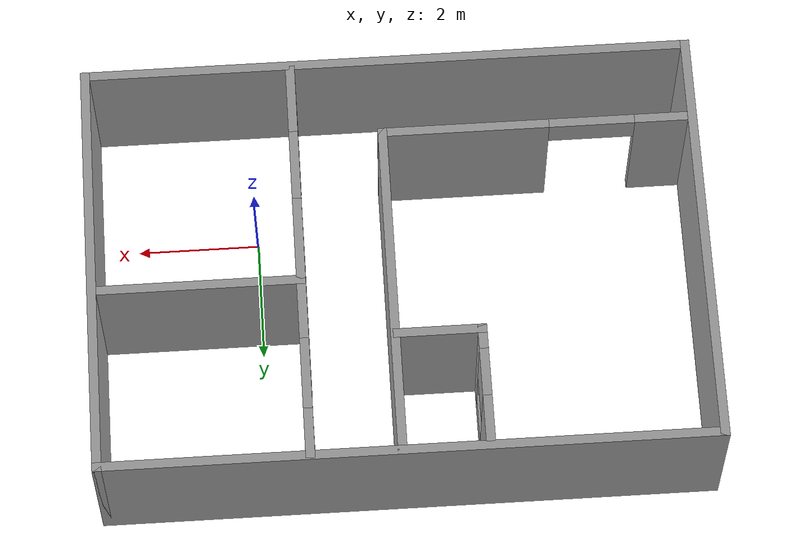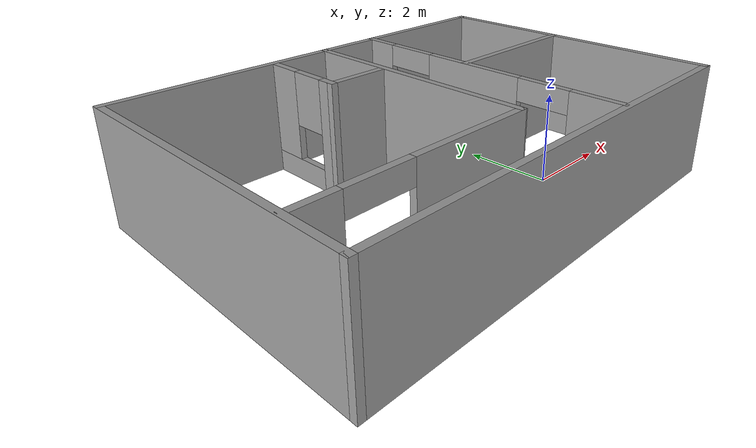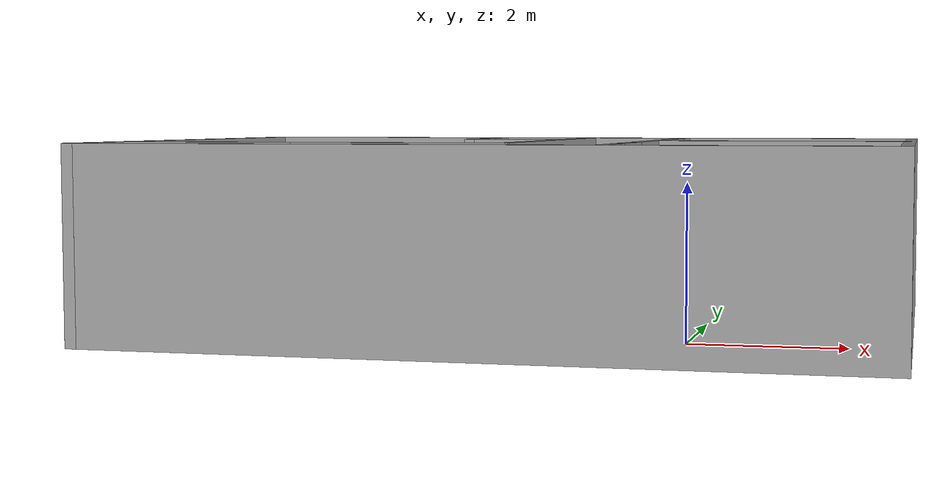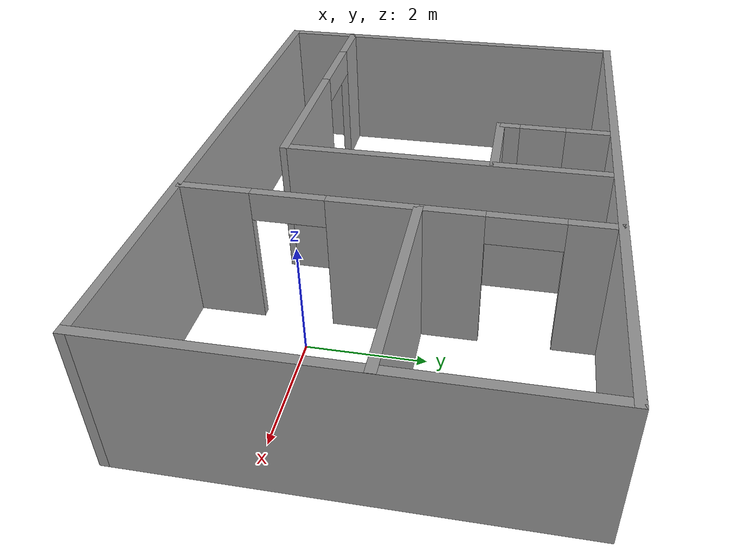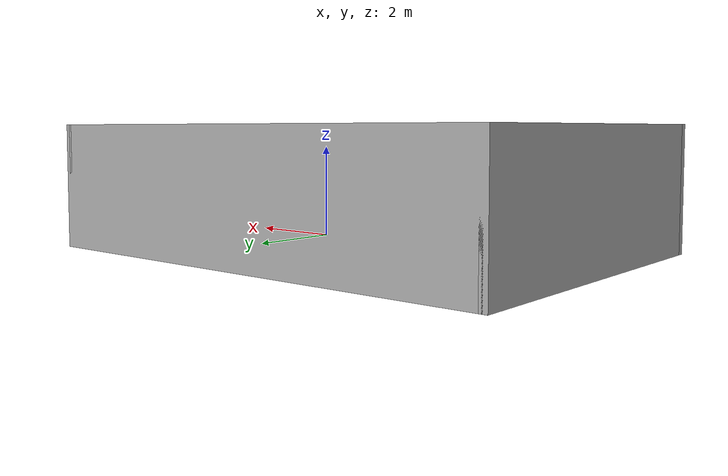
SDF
<?xml version='1.0'?>
<sdf version='1.6'>
  <model name='Movis'>
    <pose frame=''>-2.2765 1.313 0 0 -0 0</pose>
    <link name='Wall_1'>
      <collision name='Wall_1_Collision'>
        <geometry>
          <box>
            <size>10.037 0.15 2.5</size>
          </box>
        </geometry>
        <pose frame=''>0 0 1.25 0 -0 0</pose>
      </collision>
      <visual name='Wall_1_Visual'>
        <pose frame=''>0 0 1.25 0 -0 0</pose>
        <geometry>
          <box>
            <size>10.037 0.15 2.5</size>
          </box>
        </geometry>
        <material>
          <script>
            <uri>file://media/materials/scripts/gazebo.material</uri>
            <name>Gazebo/Grey</name>
          </script>
          <ambient>1 1 1 1</ambient>
        </material>
      </visual>
      <pose frame=''>0 3.425 0 0 -0 0</pose>
    </link>
    <link name='Wall_11'>
      <collision name='Wall_11_Collision'>
        <geometry>
          <box>
            <size>3.5 0.15 2.5</size>
          </box>
        </geometry>
        <pose frame=''>0 0 1.25 0 -0 0</pose>
      </collision>
      <visual name='Wall_11_Visual'>
        <pose frame=''>0 0 1.25 0 -0 0</pose>
        <geometry>
          <box>
            <size>3.5 0.15 2.5</size>
          </box>
        </geometry>
        <material>
          <script>
            <uri>file://media/materials/scripts/gazebo.material</uri>
            <name>Gazebo/Grey</name>
          </script>
          <ambient>1 1 1 1</ambient>
        </material>
      </visual>
      <pose frame=''>3.2645 0.416 0 0 -0 0</pose>
    </link>
    <link name='Wall_13'>
      <collision name='Wall_13_Collision'>
        <geometry>
          <box>
            <size>1.5 0.15 2.5</size>
          </box>
        </geometry>
        <pose frame=''>0 0 1.25 0 -0 0</pose>
      </collision>
      <visual name='Wall_13_Visual'>
        <pose frame=''>0 0 1.25 0 -0 0</pose>
        <geometry>
          <box>
            <size>1.5 0.15 2.5</size>
          </box>
        </geometry>
        <material>
          <script>
            <uri>file://media/materials/scripts/gazebo.material</uri>
            <name>Gazebo/Grey</name>
          </script>
          <ambient>1 1 1 1</ambient>
        </material>
      </visual>
      <pose frame=''>-0.580623 1.44047 0 0 -0 3.14159</pose>
    </link>
    <link name='Wall_14'>
      <pose frame=''>-1.25562 2.36547 0 0 -0 1.5708</pose>
      <visual name='Wall_14_Visual_0'>
        <pose frame=''>-0.790097 0 1.25 0 -0 0</pose>
        <geometry>
          <box>
            <size>0.419805 0.15 2.5</size>
          </box>
        </geometry>
        <material>
          <script>
            <uri>file://media/materials/scripts/gazebo.material</uri>
            <name>Gazebo/Grey</name>
          </script>
          <ambient>1 1 1 1</ambient>
        </material>
      </visual>
      <collision name='Wall_14_Collision_0'>
        <geometry>
          <box>
            <size>0.419805 0.15 2.5</size>
          </box>
        </geometry>
        <pose frame=''>-0.790097 0 1.25 0 -0 0</pose>
      </collision>
      <visual name='Wall_14_Visual_1'>
        <pose frame=''>0.209903 0 0.25 0 -0 0</pose>
        <geometry>
          <box>
            <size>1.5802 0.15 0.5</size>
          </box>
        </geometry>
        <material>
          <script>
            <uri>file://media/materials/scripts/gazebo.material</uri>
            <name>Gazebo/Grey</name>
          </script>
          <ambient>1 1 1 1</ambient>
        </material>
      </visual>
      <collision name='Wall_14_Collision_1'>
        <geometry>
          <box>
            <size>1.5802 0.15 0.5</size>
          </box>
        </geometry>
        <pose frame=''>0.209903 0 0.25 0 -0 0</pose>
      </collision>
      <visual name='Wall_14_Visual_2'>
        <pose frame=''>0.609903 0 1.5 0 -0 0</pose>
        <geometry>
          <box>
            <size>0.780195 0.15 2</size>
          </box>
        </geometry>
        <material>
          <script>
            <uri>file://media/materials/scripts/gazebo.material</uri>
            <name>Gazebo/Grey</name>
          </script>
          <ambient>1 1 1 1</ambient>
        </material>
      </visual>
      <collision name='Wall_14_Collision_2'>
        <geometry>
          <box>
            <size>0.780195 0.15 2</size>
          </box>
        </geometry>
        <pose frame=''>0.609903 0 1.5 0 -0 0</pose>
      </collision>
      <visual name='Wall_14_Visual_3'>
        <pose frame=''>-0.180195 0 1.9 0 -0 0</pose>
        <geometry>
          <box>
            <size>0.8 0.15 1.2</size>
          </box>
        </geometry>
        <material>
          <script>
            <uri>file://media/materials/scripts/gazebo.material</uri>
            <name>Gazebo/Grey</name>
          </script>
          <ambient>1 1 1 1</ambient>
        </material>
      </visual>
      <collision name='Wall_14_Collision_3'>
        <geometry>
          <box>
            <size>0.8 0.15 1.2</size>
          </box>
        </geometry>
        <pose frame=''>-0.180195 0 1.9 0 -0 0</pose>
      </collision>
    </link>
    <link name='Wall_2'>
      <collision name='Wall_2_Collision'>
        <geometry>
          <box>
            <size>7 0.15 2.5</size>
          </box>
        </geometry>
        <pose frame=''>0 0 1.25 0 -0 0</pose>
      </collision>
      <visual name='Wall_2_Visual'>
        <pose frame=''>0 0 1.25 0 -0 0</pose>
        <geometry>
          <box>
            <size>7 0.15 2.5</size>
          </box>
        </geometry>
        <material>
          <script>
            <uri>file://media/materials/scripts/gazebo.material</uri>
            <name>Gazebo/Grey</name>
          </script>
          <ambient>1 1 1 1</ambient>
        </material>
      </visual>
      <pose frame=''>4.9435 0 0 0 0 -1.5708</pose>
    </link>
    <link name='Wall_3'>
      <collision name='Wall_3_Collision'>
        <geometry>
          <box>
            <size>10.037 0.15 2.5</size>
          </box>
        </geometry>
        <pose frame=''>0 0 1.25 0 -0 0</pose>
      </collision>
      <visual name='Wall_3_Visual'>
        <pose frame=''>0 0 1.25 0 -0 0</pose>
        <geometry>
          <box>
            <size>10.037 0.15 2.5</size>
          </box>
        </geometry>
        <material>
          <script>
            <uri>file://media/materials/scripts/gazebo.material</uri>
            <name>Gazebo/Grey</name>
          </script>
          <ambient>1 1 1 1</ambient>
        </material>
      </visual>
      <pose frame=''>0 -3.425 0 0 -0 3.14159</pose>
    </link>
    <link name='Wall_4'>
      <collision name='Wall_4_Collision'>
        <geometry>
          <box>
            <size>7 0.15 2.5</size>
          </box>
        </geometry>
        <pose frame=''>0 0 1.25 0 -0 0</pose>
      </collision>
      <visual name='Wall_4_Visual'>
        <pose frame=''>0 0 1.25 0 -0 0</pose>
        <geometry>
          <box>
            <size>7 0.15 2.5</size>
          </box>
        </geometry>
        <material>
          <script>
            <uri>file://media/materials/scripts/gazebo.material</uri>
            <name>Gazebo/Grey</name>
          </script>
          <ambient>1 1 1 1</ambient>
        </material>
      </visual>
      <pose frame=''>-4.9435 0 0 0 -0 1.5708</pose>
    </link>
    <link name='Wall_6'>
      <pose frame=''>-2.39 -2.114 0 0 -0 0</pose>
      <visual name='Wall_6_Visual_0'>
        <pose frame=''>-2.10023 0 1.25 0 -0 0</pose>
        <geometry>
          <box>
            <size>0.986678 0.15 2.5</size>
          </box>
        </geometry>
        <material>
          <script>
            <uri>file://media/materials/scripts/gazebo.material</uri>
            <name>Gazebo/Grey</name>
          </script>
          <ambient>1 1 1 1</ambient>
        </material>
      </visual>
      <collision name='Wall_6_Collision_0'>
        <geometry>
          <box>
            <size>0.986678 0.15 2.5</size>
          </box>
        </geometry>
        <pose frame=''>-2.10023 0 1.25 0 -0 0</pose>
      </collision>
      <visual name='Wall_6_Visual_1'>
        <pose frame=''>1.19334 0 1.25 0 -0 0</pose>
        <geometry>
          <box>
            <size>2.80046 0.15 2.5</size>
          </box>
        </geometry>
        <material>
          <script>
            <uri>file://media/materials/scripts/gazebo.material</uri>
            <name>Gazebo/Grey</name>
          </script>
          <ambient>1 1 1 1</ambient>
        </material>
      </visual>
      <collision name='Wall_6_Collision_1'>
        <geometry>
          <box>
            <size>2.80046 0.15 2.5</size>
          </box>
        </geometry>
        <pose frame=''>1.19334 0 1.25 0 -0 0</pose>
      </collision>
      <visual name='Wall_6_Visual_2'>
        <pose frame=''>-0.906891 0 2.25 0 -0 0</pose>
        <geometry>
          <box>
            <size>1.4 0.15 0.5</size>
          </box>
        </geometry>
        <material>
          <script>
            <uri>file://media/materials/scripts/gazebo.material</uri>
            <name>Gazebo/Grey</name>
          </script>
          <ambient>1 1 1 1</ambient>
        </material>
      </visual>
      <collision name='Wall_6_Collision_2'>
        <geometry>
          <box>
            <size>1.4 0.15 0.5</size>
          </box>
        </geometry>
        <pose frame=''>-0.906891 0 2.25 0 -0 0</pose>
      </collision>
    </link>
    <link name='Wall_7'>
      <collision name='Wall_7_Collision'>
        <geometry>
          <box>
            <size>5.66484 0.15 2.5</size>
          </box>
        </geometry>
        <pose frame=''>0 0 1.25 0 -0 0</pose>
      </collision>
      <visual name='Wall_7_Visual'>
        <pose frame=''>0 0 1.25 0 -0 0</pose>
        <geometry>
          <box>
            <size>5.66484 0.15 2.5</size>
          </box>
        </geometry>
        <material>
          <script>
            <uri>file://media/materials/scripts/gazebo.material</uri>
            <name>Gazebo/Grey</name>
          </script>
          <ambient>1 1 1 1</ambient>
        </material>
      </visual>
      <pose frame=''>0.1335 0.6435 0 0 -0 1.56898</pose>
    </link>
    <link name='Wall_9'>
      <pose frame=''>1.5835 0.028 0 0 0 -1.57258</pose>
      <visual name='Wall_9_Visual_0'>
        <pose frame=''>-3.02696 0 1.25 0 -0 0</pose>
        <geometry>
          <box>
            <size>0.843657 0.15 2.5</size>
          </box>
        </geometry>
        <material>
          <script>
            <uri>file://media/materials/scripts/gazebo.material</uri>
            <name>Gazebo/Grey</name>
          </script>
          <ambient>1 1 1 1</ambient>
        </material>
      </visual>
      <collision name='Wall_9_Collision_0'>
        <geometry>
          <box>
            <size>0.843657 0.15 2.5</size>
          </box>
        </geometry>
        <pose frame=''>-3.02696 0 1.25 0 -0 0</pose>
      </collision>
      <visual name='Wall_9_Visual_1'>
        <pose frame=''>-0.178677 0 1.25 0 -0 0</pose>
        <geometry>
          <box>
            <size>2.45291 0.15 2.5</size>
          </box>
        </geometry>
        <material>
          <script>
            <uri>file://media/materials/scripts/gazebo.material</uri>
            <name>Gazebo/Grey</name>
          </script>
          <ambient>1 1 1 1</ambient>
        </material>
      </visual>
      <collision name='Wall_9_Collision_1'>
        <geometry>
          <box>
            <size>2.45291 0.15 2.5</size>
          </box>
        </geometry>
        <pose frame=''>-0.178677 0 1.25 0 -0 0</pose>
      </collision>
      <visual name='Wall_9_Visual_2'>
        <pose frame=''>2.84829 0 1.25 0 -0 0</pose>
        <geometry>
          <box>
            <size>1.20101 0.15 2.5</size>
          </box>
        </geometry>
        <material>
          <script>
            <uri>file://media/materials/scripts/gazebo.material</uri>
            <name>Gazebo/Grey</name>
          </script>
          <ambient>1 1 1 1</ambient>
        </material>
      </visual>
      <collision name='Wall_9_Collision_2'>
        <geometry>
          <box>
            <size>1.20101 0.15 2.5</size>
          </box>
        </geometry>
        <pose frame=''>2.84829 0 1.25 0 -0 0</pose>
      </collision>
      <visual name='Wall_9_Visual_3'>
        <pose frame=''>-2.00513 0 2.25 0 -0 0</pose>
        <geometry>
          <box>
            <size>1.2 0.15 0.5</size>
          </box>
        </geometry>
        <material>
          <script>
            <uri>file://media/materials/scripts/gazebo.material</uri>
            <name>Gazebo/Grey</name>
          </script>
          <ambient>1 1 1 1</ambient>
        </material>
      </visual>
      <collision name='Wall_9_Collision_3'>
        <geometry>
          <box>
            <size>1.2 0.15 0.5</size>
          </box>
        </geometry>
        <pose frame=''>-2.00513 0 2.25 0 -0 0</pose>
      </collision>
      <visual name='Wall_9_Visual_4'>
        <pose frame=''>1.64778 0 2.25 0 -0 0</pose>
        <geometry>
          <box>
            <size>1.2 0.15 0.5</size>
          </box>
        </geometry>
        <material>
          <script>
            <uri>file://media/materials/scripts/gazebo.material</uri>
            <name>Gazebo/Grey</name>
          </script>
          <ambient>1 1 1 1</ambient>
        </material>
      </visual>
      <collision name='Wall_9_Collision_4'>
        <geometry>
          <box>
            <size>1.2 0.15 0.5</size>
          </box>
        </geometry>
        <pose frame=''>1.64778 0 2.25 0 -0 0</pose>
      </collision>
    </link>
    <static>1</static>
  </model>
</sdf>
